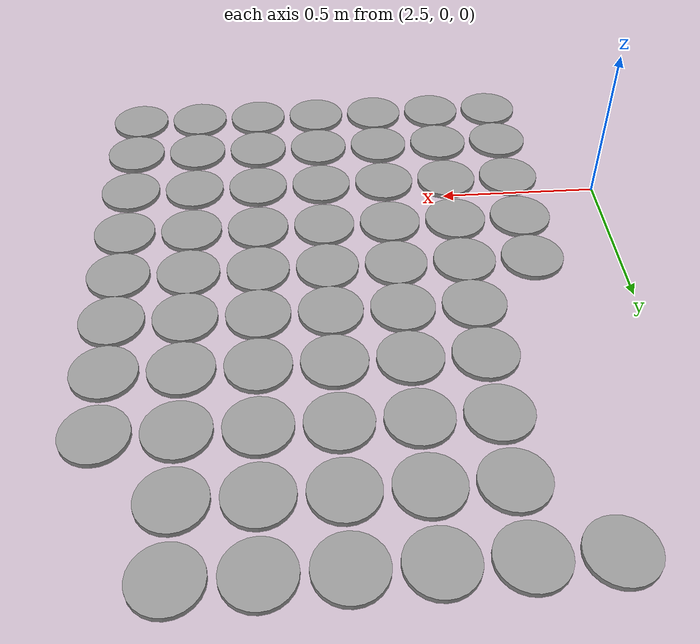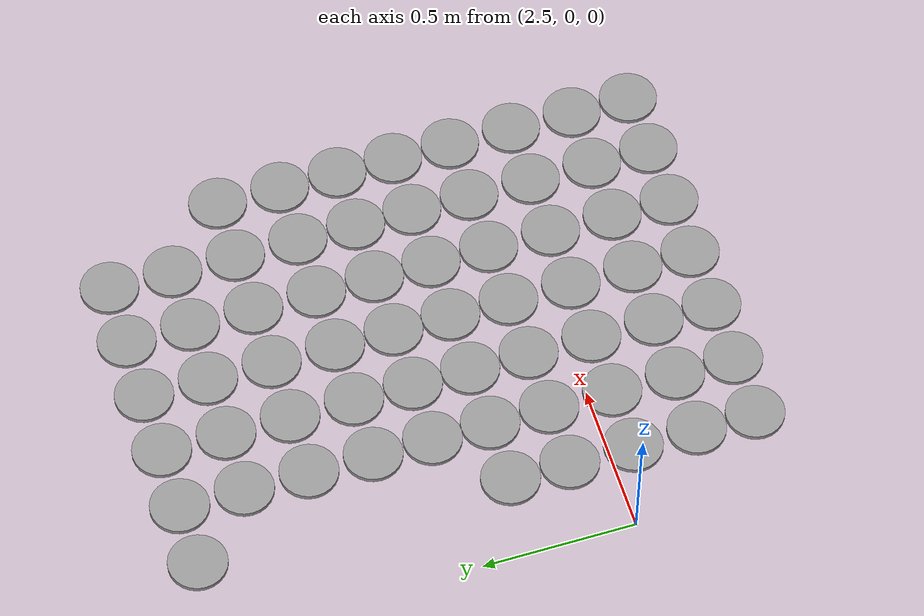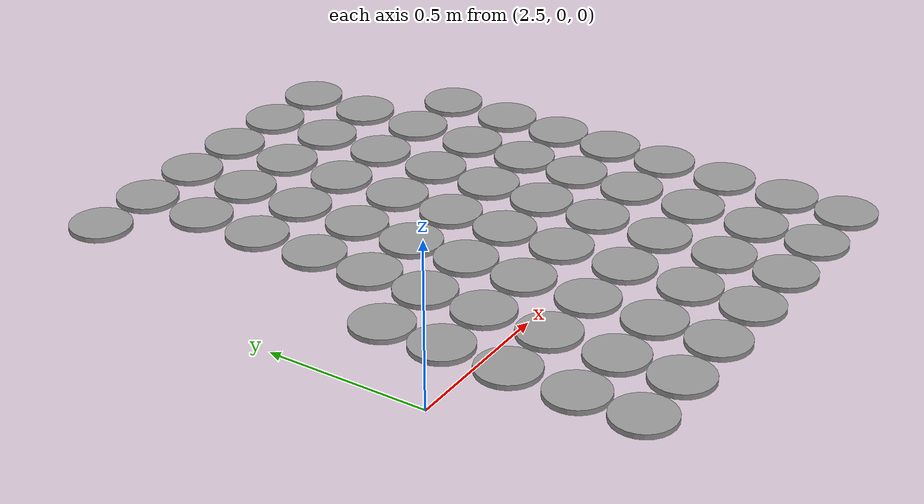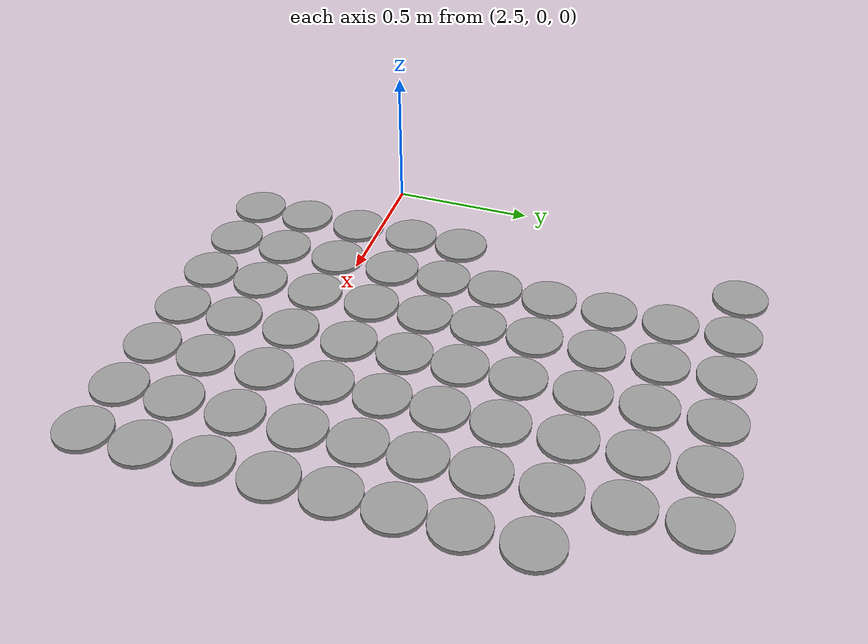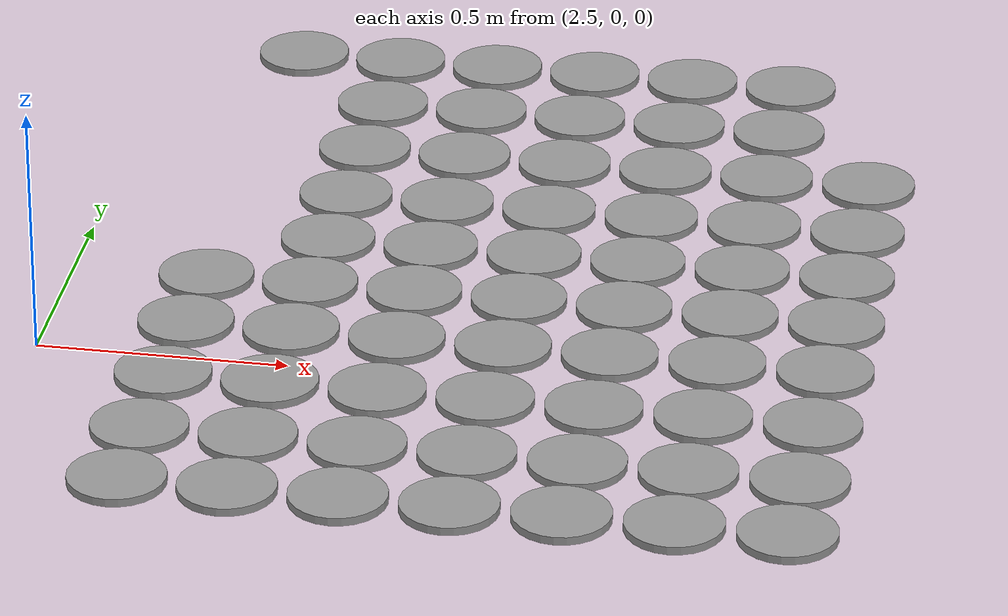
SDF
<sdf version="1.6">
 <world name="default">
  <model name="unit_cylinder_clone_189">
   <pose>2.77 1.34 0.008111 0 -0 0</pose>
   <link name="link">
    <inertial>
     <mass>1</mass>
     <inertia><ixx>0.145833</ixx><ixy>0</ixy><ixz>0</ixz><iyy>0.145833</iyy><iyz>0</iyz><izz>0.125</izz></inertia>
    </inertial>
    <collision name="collision">
     <geometry><cylinder><radius>0.0950718</radius><length>0.0162339</length></cylinder></geometry>
     <max_contacts>5</max_contacts>
    </collision>
    <visual name="visual">
     <geometry><cylinder><radius>0.0950718</radius><length>0.0162339</length></cylinder></geometry>
     <material>
      <script><name>Gazebo/Grey</name><uri>file://media/materials/scripts/gazebo.material</uri></script>
     </material>
    </visual>
   </link>
  </model>
  <model name="unit_cylinder_clone_190">
   <pose>2.98 0.515077 0.008111 0 -0 0</pose>
   <link name="link">
    <inertial>
     <mass>1</mass>
     <inertia><ixx>0.145833</ixx><ixy>0</ixy><ixz>0</ixz><iyy>0.145833</iyy><iyz>0</iyz><izz>0.125</izz></inertia>
    </inertial>
    <collision name="collision">
     <geometry><cylinder><radius>0.0950718</radius><length>0.0162339</length></cylinder></geometry>
     <max_contacts>5</max_contacts>
    </collision>
    <visual name="visual">
     <geometry><cylinder><radius>0.0950718</radius><length>0.0162339</length></cylinder></geometry>
     <material>
      <script><name>Gazebo/Grey</name><uri>file://media/materials/scripts/gazebo.material</uri></script>
     </material>
    </visual>
   </link>
  </model>
  <model name="unit_cylinder_clone_191">
   <pose>2.98 0.71 0.008111 0 -0 0</pose>
   <link name="link">
    <inertial>
     <mass>1</mass>
     <inertia><ixx>0.145833</ixx><ixy>0</ixy><ixz>0</ixz><iyy>0.145833</iyy><iyz>0</iyz><izz>0.125</izz></inertia>
    </inertial>
    <collision name="collision">
     <geometry><cylinder><radius>0.0950718</radius><length>0.0162339</length></cylinder></geometry>
     <max_contacts>5</max_contacts>
    </collision>
    <visual name="visual">
     <geometry><cylinder><radius>0.0950718</radius><length>0.0162339</length></cylinder></geometry>
     <material>
      <script><name>Gazebo/Grey</name><uri>file://media/materials/scripts/gazebo.material</uri></script>
     </material>
    </visual>
   </link>
  </model>
  <model name="unit_cylinder_clone_192">
   <pose>2.98 0.92 0.008111 0 -0 0</pose>
   <link name="link">
    <inertial>
     <mass>1</mass>
     <inertia><ixx>0.145833</ixx><ixy>0</ixy><ixz>0</ixz><iyy>0.145833</iyy><iyz>0</iyz><izz>0.125</izz></inertia>
    </inertial>
    <collision name="collision">
     <geometry><cylinder><radius>0.0950718</radius><length>0.0162339</length></cylinder></geometry>
     <max_contacts>5</max_contacts>
    </collision>
    <visual name="visual">
     <geometry><cylinder><radius>0.0950718</radius><length>0.0162339</length></cylinder></geometry>
     <material>
      <script><name>Gazebo/Grey</name><uri>file://media/materials/scripts/gazebo.material</uri></script>
     </material>
    </visual>
   </link>
  </model>
  <model name="unit_cylinder_clone_193">
   <pose>2.98 1.13 0.008111 0 -0 0</pose>
   <link name="link">
    <inertial>
     <mass>1</mass>
     <inertia><ixx>0.145833</ixx><ixy>0</ixy><ixz>0</ixz><iyy>0.145833</iyy><iyz>0</iyz><izz>0.125</izz></inertia>
    </inertial>
    <collision name="collision">
     <geometry><cylinder><radius>0.0950718</radius><length>0.0162339</length></cylinder></geometry>
     <max_contacts>5</max_contacts>
    </collision>
    <visual name="visual">
     <geometry><cylinder><radius>0.0950718</radius><length>0.0162339</length></cylinder></geometry>
     <material>
      <script><name>Gazebo/Grey</name><uri>file://media/materials/scripts/gazebo.material</uri></script>
     </material>
    </visual>
   </link>
  </model>
  <model name="unit_cylinder_clone_194">
   <pose>2.98 1.34 0.008111 0 -0 0</pose>
   <link name="link">
    <inertial>
     <mass>1</mass>
     <inertia><ixx>0.145833</ixx><ixy>0</ixy><ixz>0</ixz><iyy>0.145833</iyy><iyz>0</iyz><izz>0.125</izz></inertia>
    </inertial>
    <collision name="collision">
     <geometry><cylinder><radius>0.0950718</radius><length>0.0162339</length></cylinder></geometry>
     <max_contacts>5</max_contacts>
    </collision>
    <visual name="visual">
     <geometry><cylinder><radius>0.0950718</radius><length>0.0162339</length></cylinder></geometry>
     <material>
      <script><name>Gazebo/Grey</name><uri>file://media/materials/scripts/gazebo.material</uri></script>
     </material>
    </visual>
   </link>
  </model>
  <model name="unit_cylinder_clone_195">
   <pose>3.19 0.515077 0.008111 0 -0 0</pose>
   <link name="link">
    <inertial>
     <mass>1</mass>
     <inertia><ixx>0.145833</ixx><ixy>0</ixy><ixz>0</ixz><iyy>0.145833</iyy><iyz>0</iyz><izz>0.125</izz></inertia>
    </inertial>
    <collision name="collision">
     <geometry><cylinder><radius>0.0950718</radius><length>0.0162339</length></cylinder></geometry>
     <max_contacts>5</max_contacts>
    </collision>
    <visual name="visual">
     <geometry><cylinder><radius>0.0950718</radius><length>0.0162339</length></cylinder></geometry>
     <material>
      <script><name>Gazebo/Grey</name><uri>file://media/materials/scripts/gazebo.material</uri></script>
     </material>
    </visual>
   </link>
  </model>
  <model name="unit_cylinder_clone_196">
   <pose>3.19 0.71 0.008111 0 -0 0</pose>
   <link name="link">
    <inertial>
     <mass>1</mass>
     <inertia><ixx>0.145833</ixx><ixy>0</ixy><ixz>0</ixz><iyy>0.145833</iyy><iyz>0</iyz><izz>0.125</izz></inertia>
    </inertial>
    <collision name="collision">
     <geometry><cylinder><radius>0.0950718</radius><length>0.0162339</length></cylinder></geometry>
     <max_contacts>5</max_contacts>
    </collision>
    <visual name="visual">
     <geometry><cylinder><radius>0.0950718</radius><length>0.0162339</length></cylinder></geometry>
     <material>
      <script><name>Gazebo/Grey</name><uri>file://media/materials/scripts/gazebo.material</uri></script>
     </material>
    </visual>
   </link>
  </model>
  <model name="unit_cylinder_clone_197">
   <pose>3.19 0.92 0.008111 0 -0 0</pose>
   <link name="link">
    <inertial>
     <mass>1</mass>
     <inertia><ixx>0.145833</ixx><ixy>0</ixy><ixz>0</ixz><iyy>0.145833</iyy><iyz>0</iyz><izz>0.125</izz></inertia>
    </inertial>
    <collision name="collision">
     <geometry><cylinder><radius>0.0950718</radius><length>0.0162339</length></cylinder></geometry>
     <max_contacts>5</max_contacts>
    </collision>
    <visual name="visual">
     <geometry><cylinder><radius>0.0950718</radius><length>0.0162339</length></cylinder></geometry>
     <material>
      <script><name>Gazebo/Grey</name><uri>file://media/materials/scripts/gazebo.material</uri></script>
     </material>
    </visual>
   </link>
  </model>
  <model name="unit_cylinder_clone_198">
   <pose>3.19 1.13 0.008111 0 -0 0</pose>
   <link name="link">
    <inertial>
     <mass>1</mass>
     <inertia><ixx>0.145833</ixx><ixy>0</ixy><ixz>0</ixz><iyy>0.145833</iyy><iyz>0</iyz><izz>0.125</izz></inertia>
    </inertial>
    <collision name="collision">
     <geometry><cylinder><radius>0.0950718</radius><length>0.0162339</length></cylinder></geometry>
     <max_contacts>5</max_contacts>
    </collision>
    <visual name="visual">
     <geometry><cylinder><radius>0.0950718</radius><length>0.0162339</length></cylinder></geometry>
     <material>
      <script><name>Gazebo/Grey</name><uri>file://media/materials/scripts/gazebo.material</uri></script>
     </material>
    </visual>
   </link>
  </model>
  <model name="unit_cylinder_clone_199">
   <pose>3.19 1.34 0.008111 0 -0 0</pose>
   <link name="link">
    <inertial>
     <mass>1</mass>
     <inertia><ixx>0.145833</ixx><ixy>0</ixy><ixz>0</ixz><iyy>0.145833</iyy><iyz>0</iyz><izz>0.125</izz></inertia>
    </inertial>
    <collision name="collision">
     <geometry><cylinder><radius>0.0950718</radius><length>0.0162339</length></cylinder></geometry>
     <max_contacts>5</max_contacts>
    </collision>
    <visual name="visual">
     <geometry><cylinder><radius>0.0950718</radius><length>0.0162339</length></cylinder></geometry>
     <material>
      <script><name>Gazebo/Grey</name><uri>file://media/materials/scripts/gazebo.material</uri></script>
     </material>
    </visual>
   </link>
  </model>
  <model name="unit_cylinder_clone_200">
   <pose>3.4 0.515077 0.008111 0 -0 0</pose>
   <link name="link">
    <inertial>
     <mass>1</mass>
     <inertia><ixx>0.145833</ixx><ixy>0</ixy><ixz>0</ixz><iyy>0.145833</iyy><iyz>0</iyz><izz>0.125</izz></inertia>
    </inertial>
    <collision name="collision">
     <geometry><cylinder><radius>0.0950718</radius><length>0.0162339</length></cylinder></geometry>
     <max_contacts>5</max_contacts>
    </collision>
    <visual name="visual">
     <geometry><cylinder><radius>0.0950718</radius><length>0.0162339</length></cylinder></geometry>
     <material>
      <script><name>Gazebo/Grey</name><uri>file://media/materials/scripts/gazebo.material</uri></script>
     </material>
    </visual>
   </link>
  </model>
  <model name="unit_cylinder_clone_201">
   <pose>3.4 0.71 0.008111 0 -0 0</pose>
   <link name="link">
    <inertial>
     <mass>1</mass>
     <inertia><ixx>0.145833</ixx><ixy>0</ixy><ixz>0</ixz><iyy>0.145833</iyy><iyz>0</iyz><izz>0.125</izz></inertia>
    </inertial>
    <collision name="collision">
     <geometry><cylinder><radius>0.0950718</radius><length>0.0162339</length></cylinder></geometry>
     <max_contacts>5</max_contacts>
    </collision>
    <visual name="visual">
     <geometry><cylinder><radius>0.0950718</radius><length>0.0162339</length></cylinder></geometry>
     <material>
      <script><name>Gazebo/Grey</name><uri>file://media/materials/scripts/gazebo.material</uri></script>
     </material>
    </visual>
   </link>
  </model>
  <model name="unit_cylinder_clone_202">
   <pose>3.4 0.92 0.008111 0 -0 0</pose>
   <link name="link">
    <inertial>
     <mass>1</mass>
     <inertia><ixx>0.145833</ixx><ixy>0</ixy><ixz>0</ixz><iyy>0.145833</iyy><iyz>0</iyz><izz>0.125</izz></inertia>
    </inertial>
    <collision name="collision">
     <geometry><cylinder><radius>0.0950718</radius><length>0.0162339</length></cylinder></geometry>
     <max_contacts>5</max_contacts>
    </collision>
    <visual name="visual">
     <geometry><cylinder><radius>0.0950718</radius><length>0.0162339</length></cylinder></geometry>
     <material>
      <script><name>Gazebo/Grey</name><uri>file://media/materials/scripts/gazebo.material</uri></script>
     </material>
    </visual>
   </link>
  </model>
  <model name="unit_cylinder_clone_203">
   <pose>3.4 1.13 0.008111 0 -0 0</pose>
   <link name="link">
    <inertial>
     <mass>1</mass>
     <inertia><ixx>0.145833</ixx><ixy>0</ixy><ixz>0</ixz><iyy>0.145833</iyy><iyz>0</iyz><izz>0.125</izz></inertia>
    </inertial>
    <collision name="collision">
     <geometry><cylinder><radius>0.0950718</radius><length>0.0162339</length></cylinder></geometry>
     <max_contacts>5</max_contacts>
    </collision>
    <visual name="visual">
     <geometry><cylinder><radius>0.0950718</radius><length>0.0162339</length></cylinder></geometry>
     <material>
      <script><name>Gazebo/Grey</name><uri>file://media/materials/scripts/gazebo.material</uri></script>
     </material>
    </visual>
   </link>
  </model>
  <model name="unit_cylinder_clone_204">
   <pose>3.4 1.34 0.008111 0 -0 0</pose>
   <link name="link">
    <inertial>
     <mass>1</mass>
     <inertia><ixx>0.145833</ixx><ixy>0</ixy><ixz>0</ixz><iyy>0.145833</iyy><iyz>0</iyz><izz>0.125</izz></inertia>
    </inertial>
    <collision name="collision">
     <geometry><cylinder><radius>0.0950718</radius><length>0.0162339</length></cylinder></geometry>
     <max_contacts>5</max_contacts>
    </collision>
    <visual name="visual">
     <geometry><cylinder><radius>0.0950718</radius><length>0.0162339</length></cylinder></geometry>
     <material>
      <script><name>Gazebo/Grey</name><uri>file://media/materials/scripts/gazebo.material</uri></script>
     </material>
    </visual>
   </link>
  </model>
  <model name="unit_cylinder_clone_205">
   <pose>3.61 0.515077 0.008111 0 -0 0</pose>
   <link name="link">
    <inertial>
     <mass>1</mass>
     <inertia><ixx>0.145833</ixx><ixy>0</ixy><ixz>0</ixz><iyy>0.145833</iyy><iyz>0</iyz><izz>0.125</izz></inertia>
    </inertial>
    <collision name="collision">
     <geometry><cylinder><radius>0.0950718</radius><length>0.0162339</length></cylinder></geometry>
     <max_contacts>5</max_contacts>
    </collision>
    <visual name="visual">
     <geometry><cylinder><radius>0.0950718</radius><length>0.0162339</length></cylinder></geometry>
     <material>
      <script><name>Gazebo/Grey</name><uri>file://media/materials/scripts/gazebo.material</uri></script>
     </material>
    </visual>
   </link>
  </model>
  <model name="unit_cylinder_clone_206">
   <pose>3.61 0.71 0.008111 0 -0 0</pose>
   <link name="link">
    <inertial>
     <mass>1</mass>
     <inertia><ixx>0.145833</ixx><ixy>0</ixy><ixz>0</ixz><iyy>0.145833</iyy><iyz>0</iyz><izz>0.125</izz></inertia>
    </inertial>
    <collision name="collision">
     <geometry><cylinder><radius>0.0950718</radius><length>0.0162339</length></cylinder></geometry>
     <max_contacts>5</max_contacts>
    </collision>
    <visual name="visual">
     <geometry><cylinder><radius>0.0950718</radius><length>0.0162339</length></cylinder></geometry>
     <material>
      <script><name>Gazebo/Grey</name><uri>file://media/materials/scripts/gazebo.material</uri></script>
     </material>
    </visual>
   </link>
  </model>
  <model name="unit_cylinder_clone_207">
   <pose>3.61 0.92 0.008111 0 -0 0</pose>
   <link name="link">
    <inertial>
     <mass>1</mass>
     <inertia><ixx>0.145833</ixx><ixy>0</ixy><ixz>0</ixz><iyy>0.145833</iyy><iyz>0</iyz><izz>0.125</izz></inertia>
    </inertial>
    <collision name="collision">
     <geometry><cylinder><radius>0.0950718</radius><length>0.0162339</length></cylinder></geometry>
     <max_contacts>5</max_contacts>
    </collision>
    <visual name="visual">
     <geometry><cylinder><radius>0.0950718</radius><length>0.0162339</length></cylinder></geometry>
     <material>
      <script><name>Gazebo/Grey</name><uri>file://media/materials/scripts/gazebo.material</uri></script>
     </material>
    </visual>
   </link>
  </model>
  <model name="unit_cylinder_clone_208">
   <pose>3.61 1.13 0.008111 0 -0 0</pose>
   <link name="link">
    <inertial>
     <mass>1</mass>
     <inertia><ixx>0.145833</ixx><ixy>0</ixy><ixz>0</ixz><iyy>0.145833</iyy><iyz>0</iyz><izz>0.125</izz></inertia>
    </inertial>
    <collision name="collision">
     <geometry><cylinder><radius>0.0950718</radius><length>0.0162339</length></cylinder></geometry>
     <max_contacts>5</max_contacts>
    </collision>
    <visual name="visual">
     <geometry><cylinder><radius>0.0950718</radius><length>0.0162339</length></cylinder></geometry>
     <material>
      <script><name>Gazebo/Grey</name><uri>file://media/materials/scripts/gazebo.material</uri></script>
     </material>
    </visual>
   </link>
  </model>
  <model name="unit_cylinder_clone_209">
   <pose>3.61 1.34 0.008111 0 -0 0</pose>
   <link name="link">
    <inertial>
     <mass>1</mass>
     <inertia><ixx>0.145833</ixx><ixy>0</ixy><ixz>0</ixz><iyy>0.145833</iyy><iyz>0</iyz><izz>0.125</izz></inertia>
    </inertial>
    <collision name="collision">
     <geometry><cylinder><radius>0.0950718</radius><length>0.0162339</length></cylinder></geometry>
     <max_contacts>5</max_contacts>
    </collision>
    <visual name="visual">
     <geometry><cylinder><radius>0.0950718</radius><length>0.0162339</length></cylinder></geometry>
     <material>
      <script><name>Gazebo/Grey</name><uri>file://media/materials/scripts/gazebo.material</uri></script>
     </material>
    </visual>
   </link>
  </model>
  <model name="unit_cylinder_clone_210">
   <pose>3.82 0.515077 0.008111 0 -0 0</pose>
   <link name="link">
    <inertial>
     <mass>1</mass>
     <inertia><ixx>0.145833</ixx><ixy>0</ixy><ixz>0</ixz><iyy>0.145833</iyy><iyz>0</iyz><izz>0.125</izz></inertia>
    </inertial>
    <collision name="collision">
     <geometry><cylinder><radius>0.0950718</radius><length>0.0162339</length></cylinder></geometry>
     <max_contacts>5</max_contacts>
    </collision>
    <visual name="visual">
     <geometry><cylinder><radius>0.0950718</radius><length>0.0162339</length></cylinder></geometry>
     <material>
      <script><name>Gazebo/Grey</name><uri>file://media/materials/scripts/gazebo.material</uri></script>
     </material>
    </visual>
   </link>
  </model>
  <model name="unit_cylinder_clone_211">
   <pose>3.82 0.71 0.008111 0 -0 0</pose>
   <link name="link">
    <inertial>
     <mass>1</mass>
     <inertia><ixx>0.145833</ixx><ixy>0</ixy><ixz>0</ixz><iyy>0.145833</iyy><iyz>0</iyz><izz>0.125</izz></inertia>
    </inertial>
    <collision name="collision">
     <geometry><cylinder><radius>0.0950718</radius><length>0.0162339</length></cylinder></geometry>
     <max_contacts>5</max_contacts>
    </collision>
    <visual name="visual">
     <geometry><cylinder><radius>0.0950718</radius><length>0.0162339</length></cylinder></geometry>
     <material>
      <script><name>Gazebo/Grey</name><uri>file://media/materials/scripts/gazebo.material</uri></script>
     </material>
    </visual>
   </link>
  </model>
  <model name="unit_cylinder_clone_212">
   <pose>3.82 0.92 0.008111 0 -0 0</pose>
   <link name="link">
    <inertial>
     <mass>1</mass>
     <inertia><ixx>0.145833</ixx><ixy>0</ixy><ixz>0</ixz><iyy>0.145833</iyy><iyz>0</iyz><izz>0.125</izz></inertia>
    </inertial>
    <collision name="collision">
     <geometry><cylinder><radius>0.0950718</radius><length>0.0162339</length></cylinder></geometry>
     <max_contacts>5</max_contacts>
    </collision>
    <visual name="visual">
     <geometry><cylinder><radius>0.0950718</radius><length>0.0162339</length></cylinder></geometry>
     <material>
      <script><name>Gazebo/Grey</name><uri>file://media/materials/scripts/gazebo.material</uri></script>
     </material>
    </visual>
   </link>
  </model>
  <model name="unit_cylinder_clone_213">
   <pose>3.82 1.13 0.008111 0 -0 0</pose>
   <link name="link">
    <inertial>
     <mass>1</mass>
     <inertia><ixx>0.145833</ixx><ixy>0</ixy><ixz>0</ixz><iyy>0.145833</iyy><iyz>0</iyz><izz>0.125</izz></inertia>
    </inertial>
    <collision name="collision">
     <geometry><cylinder><radius>0.0950718</radius><length>0.0162339</length></cylinder></geometry>
     <max_contacts>5</max_contacts>
    </collision>
    <visual name="visual">
     <geometry><cylinder><radius>0.0950718</radius><length>0.0162339</length></cylinder></geometry>
     <material>
      <script><name>Gazebo/Grey</name><uri>file://media/materials/scripts/gazebo.material</uri></script>
     </material>
    </visual>
   </link>
  </model>
  <model name="unit_cylinder_clone_214">
   <pose>3.82 1.34 0.008111 0 -0 0</pose>
   <link name="link">
    <inertial>
     <mass>1</mass>
     <inertia><ixx>0.145833</ixx><ixy>0</ixy><ixz>0</ixz><iyy>0.145833</iyy><iyz>0</iyz><izz>0.125</izz></inertia>
    </inertial>
    <collision name="collision">
     <geometry><cylinder><radius>0.0950718</radius><length>0.0162339</length></cylinder></geometry>
     <max_contacts>5</max_contacts>
    </collision>
    <visual name="visual">
     <geometry><cylinder><radius>0.0950718</radius><length>0.0162339</length></cylinder></geometry>
     <material>
      <script><name>Gazebo/Grey</name><uri>file://media/materials/scripts/gazebo.material</uri></script>
     </material>
    </visual>
   </link>
  </model>
  <model name="unit_cylinder_clone_215">
   <pose>4.03 0.515077 0.008111 0 -0 0</pose>
   <link name="link">
    <inertial>
     <mass>1</mass>
     <inertia><ixx>0.145833</ixx><ixy>0</ixy><ixz>0</ixz><iyy>0.145833</iyy><iyz>0</iyz><izz>0.125</izz></inertia>
    </inertial>
    <collision name="collision">
     <geometry><cylinder><radius>0.0950718</radius><length>0.0162339</length></cylinder></geometry>
     <max_contacts>5</max_contacts>
    </collision>
    <visual name="visual">
     <geometry><cylinder><radius>0.0950718</radius><length>0.0162339</length></cylinder></geometry>
     <material>
      <script><name>Gazebo/Grey</name><uri>file://media/materials/scripts/gazebo.material</uri></script>
     </material>
    </visual>
   </link>
  </model>
  <model name="unit_cylinder_clone_216">
   <pose>4.03 0.71 0.008111 0 -0 0</pose>
   <link name="link">
    <inertial>
     <mass>1</mass>
     <inertia><ixx>0.145833</ixx><ixy>0</ixy><ixz>0</ixz><iyy>0.145833</iyy><iyz>0</iyz><izz>0.125</izz></inertia>
    </inertial>
    <collision name="collision">
     <geometry><cylinder><radius>0.0950718</radius><length>0.0162339</length></cylinder></geometry>
     <max_contacts>5</max_contacts>
    </collision>
    <visual name="visual">
     <geometry><cylinder><radius>0.0950718</radius><length>0.0162339</length></cylinder></geometry>
     <material>
      <script><name>Gazebo/Grey</name><uri>file://media/materials/scripts/gazebo.material</uri></script>
     </material>
    </visual>
   </link>
  </model>
  <model name="unit_cylinder_clone_217">
   <pose>4.03 0.92 0.008111 0 -0 0</pose>
   <link name="link">
    <inertial>
     <mass>1</mass>
     <inertia><ixx>0.145833</ixx><ixy>0</ixy><ixz>0</ixz><iyy>0.145833</iyy><iyz>0</iyz><izz>0.125</izz></inertia>
    </inertial>
    <collision name="collision">
     <geometry><cylinder><radius>0.0950718</radius><length>0.0162339</length></cylinder></geometry>
     <max_contacts>5</max_contacts>
    </collision>
    <visual name="visual">
     <geometry><cylinder><radius>0.0950718</radius><length>0.0162339</length></cylinder></geometry>
     <material>
      <script><name>Gazebo/Grey</name><uri>file://media/materials/scripts/gazebo.material</uri></script>
     </material>
    </visual>
   </link>
  </model>
  <model name="unit_cylinder_clone_435">
   <pose>2.77 -0.484923 0.008111 0 -0 0</pose>
   <link name="link">
    <inertial>
     <mass>1</mass>
     <inertia><ixx>0.145833</ixx><ixy>0</ixy><ixz>0</ixz><iyy>0.145833</iyy><iyz>0</iyz><izz>0.125</izz></inertia>
    </inertial>
    <collision name="collision">
     <geometry><cylinder><radius>0.0950718</radius><length>0.0162339</length></cylinder></geometry>
     <max_contacts>5</max_contacts>
    </collision>
    <visual name="visual">
     <geometry><cylinder><radius>0.0950718</radius><length>0.0162339</length></cylinder></geometry>
     <material>
      <script><name>Gazebo/Grey</name><uri>file://media/materials/scripts/gazebo.material</uri></script>
     </material>
    </visual>
   </link>
  </model>
  <model name="unit_cylinder_clone_436">
   <pose>2.77 -0.29 0.008111 0 -0 0</pose>
   <link name="link">
    <inertial>
     <mass>1</mass>
     <inertia><ixx>0.145833</ixx><ixy>0</ixy><ixz>0</ixz><iyy>0.145833</iyy><iyz>0</iyz><izz>0.125</izz></inertia>
    </inertial>
    <collision name="collision">
     <geometry><cylinder><radius>0.0950718</radius><length>0.0162339</length></cylinder></geometry>
     <max_contacts>5</max_contacts>
    </collision>
    <visual name="visual">
     <geometry><cylinder><radius>0.0950718</radius><length>0.0162339</length></cylinder></geometry>
     <material>
      <script><name>Gazebo/Grey</name><uri>file://media/materials/scripts/gazebo.material</uri></script>
     </material>
    </visual>
   </link>
  </model>
  <model name="unit_cylinder_clone_437">
   <pose>2.77 -0.08 0.008111 0 -0 0</pose>
   <link name="link">
    <inertial>
     <mass>1</mass>
     <inertia><ixx>0.145833</ixx><ixy>0</ixy><ixz>0</ixz><iyy>0.145833</iyy><iyz>0</iyz><izz>0.125</izz></inertia>
    </inertial>
    <collision name="collision">
     <geometry><cylinder><radius>0.0950718</radius><length>0.0162339</length></cylinder></geometry>
     <max_contacts>5</max_contacts>
    </collision>
    <visual name="visual">
     <geometry><cylinder><radius>0.0950718</radius><length>0.0162339</length></cylinder></geometry>
     <material>
      <script><name>Gazebo/Grey</name><uri>file://media/materials/scripts/gazebo.material</uri></script>
     </material>
    </visual>
   </link>
  </model>
  <model name="unit_cylinder_clone_438">
   <pose>2.77 0.13 0.008111 0 -0 0</pose>
   <link name="link">
    <inertial>
     <mass>1</mass>
     <inertia><ixx>0.145833</ixx><ixy>0</ixy><ixz>0</ixz><iyy>0.145833</iyy><iyz>0</iyz><izz>0.125</izz></inertia>
    </inertial>
    <collision name="collision">
     <geometry><cylinder><radius>0.0950718</radius><length>0.0162339</length></cylinder></geometry>
     <max_contacts>5</max_contacts>
    </collision>
    <visual name="visual">
     <geometry><cylinder><radius>0.0950718</radius><length>0.0162339</length></cylinder></geometry>
     <material>
      <script><name>Gazebo/Grey</name><uri>file://media/materials/scripts/gazebo.material</uri></script>
     </material>
    </visual>
   </link>
  </model>
  <model name="unit_cylinder_clone_439">
   <pose>2.77 0.324923 0.008111 0 -0 0</pose>
   <link name="link">
    <inertial>
     <mass>1</mass>
     <inertia><ixx>0.145833</ixx><ixy>0</ixy><ixz>0</ixz><iyy>0.145833</iyy><iyz>0</iyz><izz>0.125</izz></inertia>
    </inertial>
    <collision name="collision">
     <geometry><cylinder><radius>0.0950718</radius><length>0.0162339</length></cylinder></geometry>
     <max_contacts>5</max_contacts>
    </collision>
    <visual name="visual">
     <geometry><cylinder><radius>0.0950718</radius><length>0.0162339</length></cylinder></geometry>
     <material>
      <script><name>Gazebo/Grey</name><uri>file://media/materials/scripts/gazebo.material</uri></script>
     </material>
    </visual>
   </link>
  </model>
  <model name="unit_cylinder_clone_440">
   <pose>2.98 -0.484923 0.008111 0 -0 0</pose>
   <link name="link">
    <inertial>
     <mass>1</mass>
     <inertia><ixx>0.145833</ixx><ixy>0</ixy><ixz>0</ixz><iyy>0.145833</iyy><iyz>0</iyz><izz>0.125</izz></inertia>
    </inertial>
    <collision name="collision">
     <geometry><cylinder><radius>0.0950718</radius><length>0.0162339</length></cylinder></geometry>
     <max_contacts>5</max_contacts>
    </collision>
    <visual name="visual">
     <geometry><cylinder><radius>0.0950718</radius><length>0.0162339</length></cylinder></geometry>
     <material>
      <script><name>Gazebo/Grey</name><uri>file://media/materials/scripts/gazebo.material</uri></script>
     </material>
    </visual>
   </link>
  </model>
  <model name="unit_cylinder_clone_441">
   <pose>2.98 -0.29 0.008111 0 -0 0</pose>
   <link name="link">
    <inertial>
     <mass>1</mass>
     <inertia><ixx>0.145833</ixx><ixy>0</ixy><ixz>0</ixz><iyy>0.145833</iyy><iyz>0</iyz><izz>0.125</izz></inertia>
    </inertial>
    <collision name="collision">
     <geometry><cylinder><radius>0.0950718</radius><length>0.0162339</length></cylinder></geometry>
     <max_contacts>5</max_contacts>
    </collision>
    <visual name="visual">
     <geometry><cylinder><radius>0.0950718</radius><length>0.0162339</length></cylinder></geometry>
     <material>
      <script><name>Gazebo/Grey</name><uri>file://media/materials/scripts/gazebo.material</uri></script>
     </material>
    </visual>
   </link>
  </model>
  <model name="unit_cylinder_clone_442">
   <pose>2.98 -0.08 0.008111 0 -0 0</pose>
   <link name="link">
    <inertial>
     <mass>1</mass>
     <inertia><ixx>0.145833</ixx><ixy>0</ixy><ixz>0</ixz><iyy>0.145833</iyy><iyz>0</iyz><izz>0.125</izz></inertia>
    </inertial>
    <collision name="collision">
     <geometry><cylinder><radius>0.0950718</radius><length>0.0162339</length></cylinder></geometry>
     <max_contacts>5</max_contacts>
    </collision>
    <visual name="visual">
     <geometry><cylinder><radius>0.0950718</radius><length>0.0162339</length></cylinder></geometry>
     <material>
      <script><name>Gazebo/Grey</name><uri>file://media/materials/scripts/gazebo.material</uri></script>
     </material>
    </visual>
   </link>
  </model>
  <model name="unit_cylinder_clone_443">
   <pose>2.98 0.13 0.008111 0 -0 0</pose>
   <link name="link">
    <inertial>
     <mass>1</mass>
     <inertia><ixx>0.145833</ixx><ixy>0</ixy><ixz>0</ixz><iyy>0.145833</iyy><iyz>0</iyz><izz>0.125</izz></inertia>
    </inertial>
    <collision name="collision">
     <geometry><cylinder><radius>0.0950718</radius><length>0.0162339</length></cylinder></geometry>
     <max_contacts>5</max_contacts>
    </collision>
    <visual name="visual">
     <geometry><cylinder><radius>0.0950718</radius><length>0.0162339</length></cylinder></geometry>
     <material>
      <script><name>Gazebo/Grey</name><uri>file://media/materials/scripts/gazebo.material</uri></script>
     </material>
    </visual>
   </link>
  </model>
  <model name="unit_cylinder_clone_444">
   <pose>2.98 0.324923 0.008111 0 -0 0</pose>
   <link name="link">
    <inertial>
     <mass>1</mass>
     <inertia><ixx>0.145833</ixx><ixy>0</ixy><ixz>0</ixz><iyy>0.145833</iyy><iyz>0</iyz><izz>0.125</izz></inertia>
    </inertial>
    <collision name="collision">
     <geometry><cylinder><radius>0.0950718</radius><length>0.0162339</length></cylinder></geometry>
     <max_contacts>5</max_contacts>
    </collision>
    <visual name="visual">
     <geometry><cylinder><radius>0.0950718</radius><length>0.0162339</length></cylinder></geometry>
     <material>
      <script><name>Gazebo/Grey</name><uri>file://media/materials/scripts/gazebo.material</uri></script>
     </material>
    </visual>
   </link>
  </model>
  <model name="unit_cylinder_clone_445">
   <pose>3.19 -0.484923 0.008111 0 -0 0</pose>
   <link name="link">
    <inertial>
     <mass>1</mass>
     <inertia><ixx>0.145833</ixx><ixy>0</ixy><ixz>0</ixz><iyy>0.145833</iyy><iyz>0</iyz><izz>0.125</izz></inertia>
    </inertial>
    <collision name="collision">
     <geometry><cylinder><radius>0.0950718</radius><length>0.0162339</length></cylinder></geometry>
     <max_contacts>5</max_contacts>
    </collision>
    <visual name="visual">
     <geometry><cylinder><radius>0.0950718</radius><length>0.0162339</length></cylinder></geometry>
     <material>
      <script><name>Gazebo/Grey</name><uri>file://media/materials/scripts/gazebo.material</uri></script>
     </material>
    </visual>
   </link>
  </model>
  <model name="unit_cylinder_clone_446">
   <pose>3.19 -0.29 0.008111 0 -0 0</pose>
   <link name="link">
    <inertial>
     <mass>1</mass>
     <inertia><ixx>0.145833</ixx><ixy>0</ixy><ixz>0</ixz><iyy>0.145833</iyy><iyz>0</iyz><izz>0.125</izz></inertia>
    </inertial>
    <collision name="collision">
     <geometry><cylinder><radius>0.0950718</radius><length>0.0162339</length></cylinder></geometry>
     <max_contacts>5</max_contacts>
    </collision>
    <visual name="visual">
     <geometry><cylinder><radius>0.0950718</radius><length>0.0162339</length></cylinder></geometry>
     <material>
      <script><name>Gazebo/Grey</name><uri>file://media/materials/scripts/gazebo.material</uri></script>
     </material>
    </visual>
   </link>
  </model>
  <model name="unit_cylinder_clone_447">
   <pose>3.19 -0.08 0.008111 0 -0 0</pose>
   <link name="link">
    <inertial>
     <mass>1</mass>
     <inertia><ixx>0.145833</ixx><ixy>0</ixy><ixz>0</ixz><iyy>0.145833</iyy><iyz>0</iyz><izz>0.125</izz></inertia>
    </inertial>
    <collision name="collision">
     <geometry><cylinder><radius>0.0950718</radius><length>0.0162339</length></cylinder></geometry>
     <max_contacts>5</max_contacts>
    </collision>
    <visual name="visual">
     <geometry><cylinder><radius>0.0950718</radius><length>0.0162339</length></cylinder></geometry>
     <material>
      <script><name>Gazebo/Grey</name><uri>file://media/materials/scripts/gazebo.material</uri></script>
     </material>
    </visual>
   </link>
  </model>
  <model name="unit_cylinder_clone_448">
   <pose>3.19 0.13 0.008111 0 -0 0</pose>
   <link name="link">
    <inertial>
     <mass>1</mass>
     <inertia><ixx>0.145833</ixx><ixy>0</ixy><ixz>0</ixz><iyy>0.145833</iyy><iyz>0</iyz><izz>0.125</izz></inertia>
    </inertial>
    <collision name="collision">
     <geometry><cylinder><radius>0.0950718</radius><length>0.0162339</length></cylinder></geometry>
     <max_contacts>5</max_contacts>
    </collision>
    <visual name="visual">
     <geometry><cylinder><radius>0.0950718</radius><length>0.0162339</length></cylinder></geometry>
     <material>
      <script><name>Gazebo/Grey</name><uri>file://media/materials/scripts/gazebo.material</uri></script>
     </material>
    </visual>
   </link>
  </model>
  <model name="unit_cylinder_clone_449">
   <pose>3.19 0.324923 0.008111 0 -0 0</pose>
   <link name="link">
    <inertial>
     <mass>1</mass>
     <inertia><ixx>0.145833</ixx><ixy>0</ixy><ixz>0</ixz><iyy>0.145833</iyy><iyz>0</iyz><izz>0.125</izz></inertia>
    </inertial>
    <collision name="collision">
     <geometry><cylinder><radius>0.0950718</radius><length>0.0162339</length></cylinder></geometry>
     <max_contacts>5</max_contacts>
    </collision>
    <visual name="visual">
     <geometry><cylinder><radius>0.0950718</radius><length>0.0162339</length></cylinder></geometry>
     <material>
      <script><name>Gazebo/Grey</name><uri>file://media/materials/scripts/gazebo.material</uri></script>
     </material>
    </visual>
   </link>
  </model>
  <model name="unit_cylinder_clone_450">
   <pose>3.4 -0.484923 0.008111 0 -0 0</pose>
   <link name="link">
    <inertial>
     <mass>1</mass>
     <inertia><ixx>0.145833</ixx><ixy>0</ixy><ixz>0</ixz><iyy>0.145833</iyy><iyz>0</iyz><izz>0.125</izz></inertia>
    </inertial>
    <collision name="collision">
     <geometry><cylinder><radius>0.0950718</radius><length>0.0162339</length></cylinder></geometry>
     <max_contacts>5</max_contacts>
    </collision>
    <visual name="visual">
     <geometry><cylinder><radius>0.0950718</radius><length>0.0162339</length></cylinder></geometry>
     <material>
      <script><name>Gazebo/Grey</name><uri>file://media/materials/scripts/gazebo.material</uri></script>
     </material>
    </visual>
   </link>
  </model>
  <model name="unit_cylinder_clone_451">
   <pose>3.4 -0.29 0.008111 0 -0 0</pose>
   <link name="link">
    <inertial>
     <mass>1</mass>
     <inertia><ixx>0.145833</ixx><ixy>0</ixy><ixz>0</ixz><iyy>0.145833</iyy><iyz>0</iyz><izz>0.125</izz></inertia>
    </inertial>
    <collision name="collision">
     <geometry><cylinder><radius>0.0950718</radius><length>0.0162339</length></cylinder></geometry>
     <max_contacts>5</max_contacts>
    </collision>
    <visual name="visual">
     <geometry><cylinder><radius>0.0950718</radius><length>0.0162339</length></cylinder></geometry>
     <material>
      <script><name>Gazebo/Grey</name><uri>file://media/materials/scripts/gazebo.material</uri></script>
     </material>
    </visual>
   </link>
  </model>
  <model name="unit_cylinder_clone_452">
   <pose>3.4 -0.08 0.008111 0 -0 0</pose>
   <link name="link">
    <inertial>
     <mass>1</mass>
     <inertia><ixx>0.145833</ixx><ixy>0</ixy><ixz>0</ixz><iyy>0.145833</iyy><iyz>0</iyz><izz>0.125</izz></inertia>
    </inertial>
    <collision name="collision">
     <geometry><cylinder><radius>0.0950718</radius><length>0.0162339</length></cylinder></geometry>
     <max_contacts>5</max_contacts>
    </collision>
    <visual name="visual">
     <geometry><cylinder><radius>0.0950718</radius><length>0.0162339</length></cylinder></geometry>
     <material>
      <script><name>Gazebo/Grey</name><uri>file://media/materials/scripts/gazebo.material</uri></script>
     </material>
    </visual>
   </link>
  </model>
  <model name="unit_cylinder_clone_453">
   <pose>3.4 0.13 0.008111 0 -0 0</pose>
   <link name="link">
    <inertial>
     <mass>1</mass>
     <inertia><ixx>0.145833</ixx><ixy>0</ixy><ixz>0</ixz><iyy>0.145833</iyy><iyz>0</iyz><izz>0.125</izz></inertia>
    </inertial>
    <collision name="collision">
     <geometry><cylinder><radius>0.0950718</radius><length>0.0162339</length></cylinder></geometry>
     <max_contacts>5</max_contacts>
    </collision>
    <visual name="visual">
     <geometry><cylinder><radius>0.0950718</radius><length>0.0162339</length></cylinder></geometry>
     <material>
      <script><name>Gazebo/Grey</name><uri>file://media/materials/scripts/gazebo.material</uri></script>
     </material>
    </visual>
   </link>
  </model>
  <model name="unit_cylinder_clone_454">
   <pose>3.4 0.324923 0.008111 0 -0 0</pose>
   <link name="link">
    <inertial>
     <mass>1</mass>
     <inertia><ixx>0.145833</ixx><ixy>0</ixy><ixz>0</ixz><iyy>0.145833</iyy><iyz>0</iyz><izz>0.125</izz></inertia>
    </inertial>
    <collision name="collision">
     <geometry><cylinder><radius>0.0950718</radius><length>0.0162339</length></cylinder></geometry>
     <max_contacts>5</max_contacts>
    </collision>
    <visual name="visual">
     <geometry><cylinder><radius>0.0950718</radius><length>0.0162339</length></cylinder></geometry>
     <material>
      <script><name>Gazebo/Grey</name><uri>file://media/materials/scripts/gazebo.material</uri></script>
     </material>
    </visual>
   </link>
  </model>
  <model name="unit_cylinder_clone_455">
   <pose>3.61 -0.484923 0.008111 0 -0 0</pose>
   <link name="link">
    <inertial>
     <mass>1</mass>
     <inertia><ixx>0.145833</ixx><ixy>0</ixy><ixz>0</ixz><iyy>0.145833</iyy><iyz>0</iyz><izz>0.125</izz></inertia>
    </inertial>
    <collision name="collision">
     <geometry><cylinder><radius>0.0950718</radius><length>0.0162339</length></cylinder></geometry>
     <max_contacts>5</max_contacts>
    </collision>
    <visual name="visual">
     <geometry><cylinder><radius>0.0950718</radius><length>0.0162339</length></cylinder></geometry>
     <material>
      <script><name>Gazebo/Grey</name><uri>file://media/materials/scripts/gazebo.material</uri></script>
     </material>
    </visual>
   </link>
  </model>
  <model name="unit_cylinder_clone_456">
   <pose>3.61 -0.29 0.008111 0 -0 0</pose>
   <link name="link">
    <inertial>
     <mass>1</mass>
     <inertia><ixx>0.145833</ixx><ixy>0</ixy><ixz>0</ixz><iyy>0.145833</iyy><iyz>0</iyz><izz>0.125</izz></inertia>
    </inertial>
    <collision name="collision">
     <geometry><cylinder><radius>0.0950718</radius><length>0.0162339</length></cylinder></geometry>
     <max_contacts>5</max_contacts>
    </collision>
    <visual name="visual">
     <geometry><cylinder><radius>0.0950718</radius><length>0.0162339</length></cylinder></geometry>
     <material>
      <script><name>Gazebo/Grey</name><uri>file://media/materials/scripts/gazebo.material</uri></script>
     </material>
    </visual>
   </link>
  </model>
  <model name="unit_cylinder_clone_457">
   <pose>3.61 -0.08 0.008111 0 -0 0</pose>
   <link name="link">
    <inertial>
     <mass>1</mass>
     <inertia><ixx>0.145833</ixx><ixy>0</ixy><ixz>0</ixz><iyy>0.145833</iyy><iyz>0</iyz><izz>0.125</izz></inertia>
    </inertial>
    <collision name="collision">
     <geometry><cylinder><radius>0.0950718</radius><length>0.0162339</length></cylinder></geometry>
     <max_contacts>5</max_contacts>
    </collision>
    <visual name="visual">
     <geometry><cylinder><radius>0.0950718</radius><length>0.0162339</length></cylinder></geometry>
     <material>
      <script><name>Gazebo/Grey</name><uri>file://media/materials/scripts/gazebo.material</uri></script>
     </material>
    </visual>
   </link>
  </model>
  <model name="unit_cylinder_clone_458">
   <pose>3.61 0.13 0.008111 0 -0 0</pose>
   <link name="link">
    <inertial>
     <mass>1</mass>
     <inertia><ixx>0.145833</ixx><ixy>0</ixy><ixz>0</ixz><iyy>0.145833</iyy><iyz>0</iyz><izz>0.125</izz></inertia>
    </inertial>
    <collision name="collision">
     <geometry><cylinder><radius>0.0950718</radius><length>0.0162339</length></cylinder></geometry>
     <max_contacts>5</max_contacts>
    </collision>
    <visual name="visual">
     <geometry><cylinder><radius>0.0950718</radius><length>0.0162339</length></cylinder></geometry>
     <material>
      <script><name>Gazebo/Grey</name><uri>file://media/materials/scripts/gazebo.material</uri></script>
     </material>
    </visual>
   </link>
  </model>
  <model name="unit_cylinder_clone_459">
   <pose>3.61 0.324923 0.008111 0 -0 0</pose>
   <link name="link">
    <inertial>
     <mass>1</mass>
     <inertia><ixx>0.145833</ixx><ixy>0</ixy><ixz>0</ixz><iyy>0.145833</iyy><iyz>0</iyz><izz>0.125</izz></inertia>
    </inertial>
    <collision name="collision">
     <geometry><cylinder><radius>0.0950718</radius><length>0.0162339</length></cylinder></geometry>
     <max_contacts>5</max_contacts>
    </collision>
    <visual name="visual">
     <geometry><cylinder><radius>0.0950718</radius><length>0.0162339</length></cylinder></geometry>
     <material>
      <script><name>Gazebo/Grey</name><uri>file://media/materials/scripts/gazebo.material</uri></script>
     </material>
    </visual>
   </link>
  </model>
  <model name="unit_cylinder_clone_460">
   <pose>3.82 -0.484923 0.008111 0 -0 0</pose>
   <link name="link">
    <inertial>
     <mass>1</mass>
     <inertia><ixx>0.145833</ixx><ixy>0</ixy><ixz>0</ixz><iyy>0.145833</iyy><iyz>0</iyz><izz>0.125</izz></inertia>
    </inertial>
    <collision name="collision">
     <geometry><cylinder><radius>0.0950718</radius><length>0.0162339</length></cylinder></geometry>
     <max_contacts>5</max_contacts>
    </collision>
    <visual name="visual">
     <geometry><cylinder><radius>0.0950718</radius><length>0.0162339</length></cylinder></geometry>
     <material>
      <script><name>Gazebo/Grey</name><uri>file://media/materials/scripts/gazebo.material</uri></script>
     </material>
    </visual>
   </link>
  </model>
  <model name="unit_cylinder_clone_461">
   <pose>3.82 -0.29 0.008111 0 -0 0</pose>
   <link name="link">
    <inertial>
     <mass>1</mass>
     <inertia><ixx>0.145833</ixx><ixy>0</ixy><ixz>0</ixz><iyy>0.145833</iyy><iyz>0</iyz><izz>0.125</izz></inertia>
    </inertial>
    <collision name="collision">
     <geometry><cylinder><radius>0.0950718</radius><length>0.0162339</length></cylinder></geometry>
     <max_contacts>5</max_contacts>
    </collision>
    <visual name="visual">
     <geometry><cylinder><radius>0.0950718</radius><length>0.0162339</length></cylinder></geometry>
     <material>
      <script><name>Gazebo/Grey</name><uri>file://media/materials/scripts/gazebo.material</uri></script>
     </material>
    </visual>
   </link>
  </model>
  <model name="unit_cylinder_clone_462">
   <pose>3.82 -0.08 0.008111 0 -0 0</pose>
   <link name="link">
    <inertial>
     <mass>1</mass>
     <inertia><ixx>0.145833</ixx><ixy>0</ixy><ixz>0</ixz><iyy>0.145833</iyy><iyz>0</iyz><izz>0.125</izz></inertia>
    </inertial>
    <collision name="collision">
     <geometry><cylinder><radius>0.0950718</radius><length>0.0162339</length></cylinder></geometry>
     <max_contacts>5</max_contacts>
    </collision>
    <visual name="visual">
     <geometry><cylinder><radius>0.0950718</radius><length>0.0162339</length></cylinder></geometry>
     <material>
      <script><name>Gazebo/Grey</name><uri>file://media/materials/scripts/gazebo.material</uri></script>
     </material>
    </visual>
   </link>
  </model>
  <model name="unit_cylinder_clone_463">
   <pose>3.82 0.13 0.008111 0 -0 0</pose>
   <link name="link">
    <inertial>
     <mass>1</mass>
     <inertia><ixx>0.145833</ixx><ixy>0</ixy><ixz>0</ixz><iyy>0.145833</iyy><iyz>0</iyz><izz>0.125</izz></inertia>
    </inertial>
    <collision name="collision">
     <geometry><cylinder><radius>0.0950718</radius><length>0.0162339</length></cylinder></geometry>
     <max_contacts>5</max_contacts>
    </collision>
    <visual name="visual">
     <geometry><cylinder><radius>0.0950718</radius><length>0.0162339</length></cylinder></geometry>
     <material>
      <script><name>Gazebo/Grey</name><uri>file://media/materials/scripts/gazebo.material</uri></script>
     </material>
    </visual>
   </link>
  </model>
  <model name="unit_cylinder_clone_464">
   <pose>3.82 0.324923 0.008111 0 -0 0</pose>
   <link name="link">
    <inertial>
     <mass>1</mass>
     <inertia><ixx>0.145833</ixx><ixy>0</ixy><ixz>0</ixz><iyy>0.145833</iyy><iyz>0</iyz><izz>0.125</izz></inertia>
    </inertial>
    <collision name="collision">
     <geometry><cylinder><radius>0.0950718</radius><length>0.0162339</length></cylinder></geometry>
     <max_contacts>5</max_contacts>
    </collision>
    <visual name="visual">
     <geometry><cylinder><radius>0.0950718</radius><length>0.0162339</length></cylinder></geometry>
     <material>
      <script><name>Gazebo/Grey</name><uri>file://media/materials/scripts/gazebo.material</uri></script>
     </material>
    </visual>
   </link>
  </model>
  <model name="unit_cylinder_clone_465">
   <pose>4.03 -0.484923 0.008111 0 -0 0</pose>
   <link name="link">
    <inertial>
     <mass>1</mass>
     <inertia><ixx>0.145833</ixx><ixy>0</ixy><ixz>0</ixz><iyy>0.145833</iyy><iyz>0</iyz><izz>0.125</izz></inertia>
    </inertial>
    <collision name="collision">
     <geometry><cylinder><radius>0.0950718</radius><length>0.0162339</length></cylinder></geometry>
     <max_contacts>5</max_contacts>
    </collision>
    <visual name="visual">
     <geometry><cylinder><radius>0.0950718</radius><length>0.0162339</length></cylinder></geometry>
     <material>
      <script><name>Gazebo/Grey</name><uri>file://media/materials/scripts/gazebo.material</uri></script>
     </material>
    </visual>
   </link>
  </model>
  <model name="unit_cylinder_clone_466">
   <pose>4.03 -0.29 0.008111 0 -0 0</pose>
   <link name="link">
    <inertial>
     <mass>1</mass>
     <inertia><ixx>0.145833</ixx><ixy>0</ixy><ixz>0</ixz><iyy>0.145833</iyy><iyz>0</iyz><izz>0.125</izz></inertia>
    </inertial>
    <collision name="collision">
     <geometry><cylinder><radius>0.0950718</radius><length>0.0162339</length></cylinder></geometry>
     <max_contacts>5</max_contacts>
    </collision>
    <visual name="visual">
     <geometry><cylinder><radius>0.0950718</radius><length>0.0162339</length></cylinder></geometry>
     <material>
      <script><name>Gazebo/Grey</name><uri>file://media/materials/scripts/gazebo.material</uri></script>
     </material>
    </visual>
   </link>
  </model>
  <model name="unit_cylinder_clone_467">
   <pose>4.03 -0.08 0.008111 0 -0 0</pose>
   <link name="link">
    <inertial>
     <mass>1</mass>
     <inertia><ixx>0.145833</ixx><ixy>0</ixy><ixz>0</ixz><iyy>0.145833</iyy><iyz>0</iyz><izz>0.125</izz></inertia>
    </inertial>
    <collision name="collision">
     <geometry><cylinder><radius>0.0950718</radius><length>0.0162339</length></cylinder></geometry>
     <max_contacts>5</max_contacts>
    </collision>
    <visual name="visual">
     <geometry><cylinder><radius>0.0950718</radius><length>0.0162339</length></cylinder></geometry>
     <material>
      <script><name>Gazebo/Grey</name><uri>file://media/materials/scripts/gazebo.material</uri></script>
     </material>
    </visual>
   </link>
  </model>
  <model name="unit_cylinder_clone_468">
   <pose>4.03 0.13 0.008111 0 -0 0</pose>
   <link name="link">
    <inertial>
     <mass>1</mass>
     <inertia><ixx>0.145833</ixx><ixy>0</ixy><ixz>0</ixz><iyy>0.145833</iyy><iyz>0</iyz><izz>0.125</izz></inertia>
    </inertial>
    <collision name="collision">
     <geometry><cylinder><radius>0.0950718</radius><length>0.0162339</length></cylinder></geometry>
     <max_contacts>5</max_contacts>
    </collision>
    <visual name="visual">
     <geometry><cylinder><radius>0.0950718</radius><length>0.0162339</length></cylinder></geometry>
     <material>
      <script><name>Gazebo/Grey</name><uri>file://media/materials/scripts/gazebo.material</uri></script>
     </material>
    </visual>
   </link>
  </model>
  <model name="unit_cylinder_clone_469">
   <pose>4.03 0.324923 0.008111 0 -0 0</pose>
   <link name="link">
    <inertial>
     <mass>1</mass>
     <inertia><ixx>0.145833</ixx><ixy>0</ixy><ixz>0</ixz><iyy>0.145833</iyy><iyz>0</iyz><izz>0.125</izz></inertia>
    </inertial>
    <collision name="collision">
     <geometry><cylinder><radius>0.0950718</radius><length>0.0162339</length></cylinder></geometry>
     <max_contacts>5</max_contacts>
    </collision>
    <visual name="visual">
     <geometry><cylinder><radius>0.0950718</radius><length>0.0162339</length></cylinder></geometry>
     <material>
      <script><name>Gazebo/Grey</name><uri>file://media/materials/scripts/gazebo.material</uri></script>
     </material>
    </visual>
   </link>
  </model>
 </world>
</sdf>
